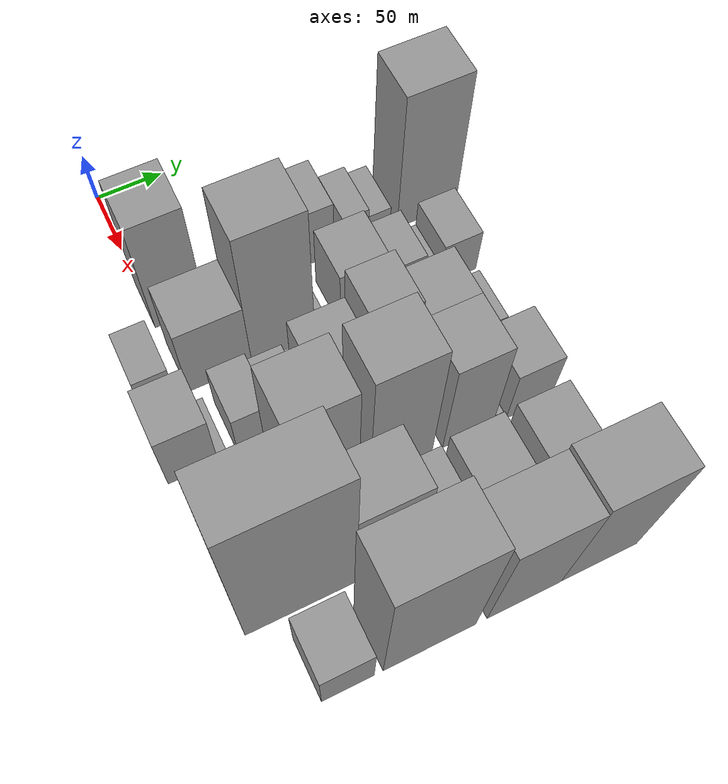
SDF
<sdf version="1.6">
 <world name="default">
  <model name="building_26">
   <static>1</static>
   <pose>100.0000 17.9681 0 0.000000 0.000000 0.000000</pose>
   <link name="link">
    <pose>0 0 61.50 0 0 0</pose>
    <collision name="collision"><geometry><box><size>40.0000 38.0555 123.0000</size></box></geometry></collision>
    <visual name="visual">
     <cast_shadows>0</cast_shadows>
     <geometry><box><size>40.0000 38.0555 123.0000</size></box></geometry>
     <material>
      <script>
       <uri>model://grey_wall/materials/scripts</uri>
       <uri>model://grey_wall/materials/textures</uri>
       <name>vrc/grey_wall</name>
      </script>
     </material>
    </visual>
   </link>
  </model>
  <model name="building_27">
   <static>1</static>
   <pose>100.0000 120.3168 0 0.000000 0.000000 0.000000</pose>
   <link name="link">
    <pose>0 0 31.50 0 0 0</pose>
    <collision name="collision"><geometry><box><size>40.0000 32.2140 63.0000</size></box></geometry></collision>
    <visual name="visual">
     <cast_shadows>0</cast_shadows>
     <geometry><box><size>40.0000 32.2140 63.0000</size></box></geometry>
     <material>
      <script>
       <uri>model://grey_wall/materials/scripts</uri>
       <uri>model://grey_wall/materials/textures</uri>
       <name>vrc/grey_wall</name>
      </script>
     </material>
    </visual>
   </link>
  </model>
  <model name="building_28">
   <static>1</static>
   <pose>100.0000 153.5409 0 0.000000 0.000000 0.000000</pose>
   <link name="link">
    <pose>0 0 19.50 0 0 0</pose>
    <collision name="collision"><geometry><box><size>40.0000 20.2342 39.0000</size></box></geometry></collision>
    <visual name="visual">
     <cast_shadows>0</cast_shadows>
     <geometry><box><size>40.0000 20.2342 39.0000</size></box></geometry>
     <material>
      <script>
       <uri>model://grey_wall/materials/scripts</uri>
       <uri>model://grey_wall/materials/textures</uri>
       <name>vrc/grey_wall</name>
      </script>
     </material>
    </visual>
   </link>
  </model>
  <model name="building_29">
   <static>1</static>
   <pose>100.0000 172.3773 0 0.000000 0.000000 0.000000</pose>
   <link name="link">
    <pose>0 0 15.00 0 0 0</pose>
    <collision name="collision"><geometry><box><size>40.0000 17.4387 30.0000</size></box></geometry></collision>
    <visual name="visual">
     <cast_shadows>0</cast_shadows>
     <geometry><box><size>40.0000 17.4387 30.0000</size></box></geometry>
     <material>
      <script>
       <uri>model://grey_wall/materials/scripts</uri>
       <uri>model://grey_wall/materials/textures</uri>
       <name>vrc/grey_wall</name>
      </script>
     </material>
    </visual>
   </link>
  </model>
  <model name="building_30">
   <static>1</static>
   <pose>100.0000 211.2149 0 0.000000 0.000000 0.000000</pose>
   <link name="link">
    <pose>0 0 72.00 0 0 0</pose>
    <collision name="collision"><geometry><box><size>40.0000 48.2366 144.0000</size></box></geometry></collision>
    <visual name="visual">
     <cast_shadows>0</cast_shadows>
     <geometry><box><size>40.0000 48.2366 144.0000</size></box></geometry>
     <material>
      <script>
       <uri>model://grey_wall/materials/scripts</uri>
       <uri>model://grey_wall/materials/textures</uri>
       <name>vrc/grey_wall</name>
      </script>
     </material>
    </visual>
   </link>
  </model>
  <model name="building_71">
   <static>1</static>
   <pose>155.0000 -19.7303 0 0.000000 0.000000 0.000000</pose>
   <link name="link">
    <pose>0 0 21.00 0 0 0</pose>
    <collision name="collision"><geometry><box><size>40.0000 24.4039 42.0000</size></box></geometry></collision>
    <visual name="visual">
     <cast_shadows>0</cast_shadows>
     <geometry><box><size>40.0000 24.4039 42.0000</size></box></geometry>
     <material>
      <script>
       <uri>model://grey_wall/materials/scripts</uri>
       <uri>model://grey_wall/materials/textures</uri>
       <name>vrc/grey_wall</name>
      </script>
     </material>
    </visual>
   </link>
  </model>
  <model name="building_72">
   <static>1</static>
   <pose>155.0000 24.8580 0 0.000000 0.000000 0.000000</pose>
   <link name="link">
    <pose>0 0 39.00 0 0 0</pose>
    <collision name="collision"><geometry><box><size>40.0000 46.7727 78.0000</size></box></geometry></collision>
    <visual name="visual">
     <cast_shadows>0</cast_shadows>
     <geometry><box><size>40.0000 46.7727 78.0000</size></box></geometry>
     <material>
      <script>
       <uri>model://grey_wall/materials/scripts</uri>
       <uri>model://grey_wall/materials/textures</uri>
       <name>vrc/grey_wall</name>
      </script>
     </material>
    </visual>
   </link>
  </model>
  <model name="building_73">
   <static>1</static>
   <pose>155.0000 71.9212 0 0.000000 0.000000 0.000000</pose>
   <link name="link">
    <pose>0 0 78.00 0 0 0</pose>
    <collision name="collision"><geometry><box><size>40.0000 47.3537 156.0000</size></box></geometry></collision>
    <visual name="visual">
     <cast_shadows>0</cast_shadows>
     <geometry><box><size>40.0000 47.3537 156.0000</size></box></geometry>
     <material>
      <script>
       <uri>model://grey_wall/materials/scripts</uri>
       <uri>model://grey_wall/materials/textures</uri>
       <name>vrc/grey_wall</name>
      </script>
     </material>
    </visual>
   </link>
  </model>
  <model name="building_74">
   <static>1</static>
   <pose>155.0000 100.2615 0 0.000000 0.000000 0.000000</pose>
   <link name="link">
    <pose>0 0 10.50 0 0 0</pose>
    <collision name="collision"><geometry><box><size>40.0000 9.3268 21.0000</size></box></geometry></collision>
    <visual name="visual">
     <cast_shadows>0</cast_shadows>
     <geometry><box><size>40.0000 9.3268 21.0000</size></box></geometry>
     <material>
      <script>
       <uri>model://grey_wall/materials/scripts</uri>
       <uri>model://grey_wall/materials/textures</uri>
       <name>vrc/grey_wall</name>
      </script>
     </material>
    </visual>
   </link>
  </model>
  <model name="building_75">
   <static>1</static>
   <pose>155.0000 133.3745 0 0.000000 0.000000 0.000000</pose>
   <link name="link">
    <pose>0 0 33.00 0 0 0</pose>
    <collision name="collision"><geometry><box><size>40.0000 36.8993 66.0000</size></box></geometry></collision>
    <visual name="visual">
     <cast_shadows>0</cast_shadows>
     <geometry><box><size>40.0000 36.8993 66.0000</size></box></geometry>
     <material>
      <script>
       <uri>model://grey_wall/materials/scripts</uri>
       <uri>model://grey_wall/materials/textures</uri>
       <name>vrc/grey_wall</name>
      </script>
     </material>
    </visual>
   </link>
  </model>
  <model name="building_76">
   <static>1</static>
   <pose>155.0000 165.8428 0 0.000000 0.000000 0.000000</pose>
   <link name="link">
    <pose>0 0 24.00 0 0 0</pose>
    <collision name="collision"><geometry><box><size>40.0000 28.0374 48.0000</size></box></geometry></collision>
    <visual name="visual">
     <cast_shadows>0</cast_shadows>
     <geometry><box><size>40.0000 28.0374 48.0000</size></box></geometry>
     <material>
      <script>
       <uri>model://grey_wall/materials/scripts</uri>
       <uri>model://grey_wall/materials/textures</uri>
       <name>vrc/grey_wall</name>
      </script>
     </material>
    </visual>
   </link>
  </model>
  <model name="building_77">
   <static>1</static>
   <pose>155.0000 188.6100 0 0.000000 0.000000 0.000000</pose>
   <link name="link">
    <pose>0 0 10.50 0 0 0</pose>
    <collision name="collision"><geometry><box><size>40.0000 9.4970 21.0000</size></box></geometry></collision>
    <visual name="visual">
     <cast_shadows>0</cast_shadows>
     <geometry><box><size>40.0000 9.4970 21.0000</size></box></geometry>
     <material>
      <script>
       <uri>model://grey_wall/materials/scripts</uri>
       <uri>model://grey_wall/materials/textures</uri>
       <name>vrc/grey_wall</name>
      </script>
     </material>
    </visual>
   </link>
  </model>
  <model name="building_78">
   <static>1</static>
   <pose>155.0000 207.6373 0 0.000000 0.000000 0.000000</pose>
   <link name="link">
    <pose>0 0 24.00 0 0 0</pose>
    <collision name="collision"><geometry><box><size>40.0000 28.5574 48.0000</size></box></geometry></collision>
    <visual name="visual">
     <cast_shadows>0</cast_shadows>
     <geometry><box><size>40.0000 28.5574 48.0000</size></box></geometry>
     <material>
      <script>
       <uri>model://grey_wall/materials/scripts</uri>
       <uri>model://grey_wall/materials/textures</uri>
       <name>vrc/grey_wall</name>
      </script>
     </material>
    </visual>
   </link>
  </model>
  <model name="building_127">
   <static>1</static>
   <pose>210.0000 -17.3884 0 0.000000 0.000000 0.000000</pose>
   <link name="link">
    <pose>0 0 33.00 0 0 0</pose>
    <collision name="collision"><geometry><box><size>40.0000 35.0123 66.0000</size></box></geometry></collision>
    <visual name="visual">
     <cast_shadows>0</cast_shadows>
     <geometry><box><size>40.0000 35.0123 66.0000</size></box></geometry>
     <material>
      <script>
       <uri>model://grey_wall/materials/scripts</uri>
       <uri>model://grey_wall/materials/textures</uri>
       <name>vrc/grey_wall</name>
      </script>
     </material>
    </visual>
   </link>
  </model>
  <model name="building_128">
   <static>1</static>
   <pose>210.0000 3.6164 0 0.000000 0.000000 0.000000</pose>
   <link name="link">
    <pose>0 0 7.50 0 0 0</pose>
    <collision name="collision"><geometry><box><size>40.0000 6.9972 15.0000</size></box></geometry></collision>
    <visual name="visual">
     <cast_shadows>0</cast_shadows>
     <geometry><box><size>40.0000 6.9972 15.0000</size></box></geometry>
     <material>
      <script>
       <uri>model://grey_wall/materials/scripts</uri>
       <uri>model://grey_wall/materials/textures</uri>
       <name>vrc/grey_wall</name>
      </script>
     </material>
    </visual>
   </link>
  </model>
  <model name="building_129">
   <static>1</static>
   <pose>210.0000 27.3994 0 0.000000 0.000000 0.000000</pose>
   <link name="link">
    <pose>0 0 25.50 0 0 0</pose>
    <collision name="collision"><geometry><box><size>40.0000 26.5687 51.0000</size></box></geometry></collision>
    <visual name="visual">
     <cast_shadows>0</cast_shadows>
     <geometry><box><size>40.0000 26.5687 51.0000</size></box></geometry>
     <material>
      <script>
       <uri>model://grey_wall/materials/scripts</uri>
       <uri>model://grey_wall/materials/textures</uri>
       <name>vrc/grey_wall</name>
      </script>
     </material>
    </visual>
   </link>
  </model>
  <model name="building_130">
   <static>1</static>
   <pose>210.0000 53.1228 0 0.000000 0.000000 0.000000</pose>
   <link name="link">
    <pose>0 0 21.00 0 0 0</pose>
    <collision name="collision"><geometry><box><size>40.0000 24.8782 42.0000</size></box></geometry></collision>
    <visual name="visual">
     <cast_shadows>0</cast_shadows>
     <geometry><box><size>40.0000 24.8782 42.0000</size></box></geometry>
     <material>
      <script>
       <uri>model://grey_wall/materials/scripts</uri>
       <uri>model://grey_wall/materials/textures</uri>
       <name>vrc/grey_wall</name>
      </script>
     </material>
    </visual>
   </link>
  </model>
  <model name="building_131">
   <static>1</static>
   <pose>210.0000 90.8066 0 0.000000 0.000000 0.000000</pose>
   <link name="link">
    <pose>0 0 34.50 0 0 0</pose>
    <collision name="collision"><geometry><box><size>40.0000 40.4894 69.0000</size></box></geometry></collision>
    <visual name="visual">
     <cast_shadows>0</cast_shadows>
     <geometry><box><size>40.0000 40.4894 69.0000</size></box></geometry>
     <material>
      <script>
       <uri>model://grey_wall/materials/scripts</uri>
       <uri>model://grey_wall/materials/textures</uri>
       <name>vrc/grey_wall</name>
      </script>
     </material>
    </visual>
   </link>
  </model>
  <model name="building_132">
   <static>1</static>
   <pose>210.0000 128.0512 0 0.000000 0.000000 0.000000</pose>
   <link name="link">
    <pose>0 0 51.00 0 0 0</pose>
    <collision name="collision"><geometry><box><size>40.0000 33.9999 102.0000</size></box></geometry></collision>
    <visual name="visual">
     <cast_shadows>0</cast_shadows>
     <geometry><box><size>40.0000 33.9999 102.0000</size></box></geometry>
     <material>
      <script>
       <uri>model://grey_wall/materials/scripts</uri>
       <uri>model://grey_wall/materials/textures</uri>
       <name>vrc/grey_wall</name>
      </script>
     </material>
    </visual>
   </link>
  </model>
  <model name="building_133">
   <static>1</static>
   <pose>210.0000 169.4669 0 0.000000 0.000000 0.000000</pose>
   <link name="link">
    <pose>0 0 37.50 0 0 0</pose>
    <collision name="collision"><geometry><box><size>40.0000 38.8314 75.0000</size></box></geometry></collision>
    <visual name="visual">
     <cast_shadows>0</cast_shadows>
     <geometry><box><size>40.0000 38.8314 75.0000</size></box></geometry>
     <material>
      <script>
       <uri>model://grey_wall/materials/scripts</uri>
       <uri>model://grey_wall/materials/textures</uri>
       <name>vrc/grey_wall</name>
      </script>
     </material>
    </visual>
   </link>
  </model>
  <model name="building_134">
   <static>1</static>
   <pose>210.0000 194.6964 0 0.000000 0.000000 0.000000</pose>
   <link name="link">
    <pose>0 0 12.00 0 0 0</pose>
    <collision name="collision"><geometry><box><size>40.0000 11.6277 24.0000</size></box></geometry></collision>
    <visual name="visual">
     <cast_shadows>0</cast_shadows>
     <geometry><box><size>40.0000 11.6277 24.0000</size></box></geometry>
     <material>
      <script>
       <uri>model://grey_wall/materials/scripts</uri>
       <uri>model://grey_wall/materials/textures</uri>
       <name>vrc/grey_wall</name>
      </script>
     </material>
    </visual>
   </link>
  </model>
  <model name="building_135">
   <static>1</static>
   <pose>210.0000 206.9292 0 0.000000 0.000000 0.000000</pose>
   <link name="link">
    <pose>0 0 13.50 0 0 0</pose>
    <collision name="collision"><geometry><box><size>40.0000 12.8377 27.0000</size></box></geometry></collision>
    <visual name="visual">
     <cast_shadows>0</cast_shadows>
     <geometry><box><size>40.0000 12.8377 27.0000</size></box></geometry>
     <material>
      <script>
       <uri>model://grey_wall/materials/scripts</uri>
       <uri>model://grey_wall/materials/textures</uri>
       <name>vrc/grey_wall</name>
      </script>
     </material>
    </visual>
   </link>
  </model>
  <model name="building_181">
   <static>1</static>
   <pose>265.0000 -10.8757 0 0.000000 0.000000 0.000000</pose>
   <link name="link">
    <pose>0 0 15.00 0 0 0</pose>
    <collision name="collision"><geometry><box><size>40.0000 16.2422 30.0000</size></box></geometry></collision>
    <visual name="visual">
     <cast_shadows>0</cast_shadows>
     <geometry><box><size>40.0000 16.2422 30.0000</size></box></geometry>
     <material>
      <script>
       <uri>model://grey_wall/materials/scripts</uri>
       <uri>model://grey_wall/materials/textures</uri>
       <name>vrc/grey_wall</name>
      </script>
     </material>
    </visual>
   </link>
  </model>
  <model name="building_182">
   <static>1</static>
   <pose>265.0000 17.3211 0 0.000000 0.000000 0.000000</pose>
   <link name="link">
    <pose>0 0 24.00 0 0 0</pose>
    <collision name="collision"><geometry><box><size>40.0000 24.1514 48.0000</size></box></geometry></collision>
    <visual name="visual">
     <cast_shadows>0</cast_shadows>
     <geometry><box><size>40.0000 24.1514 48.0000</size></box></geometry>
     <material>
      <script>
       <uri>model://grey_wall/materials/scripts</uri>
       <uri>model://grey_wall/materials/textures</uri>
       <name>vrc/grey_wall</name>
      </script>
     </material>
    </visual>
   </link>
  </model>
  <model name="building_183">
   <static>1</static>
   <pose>265.0000 52.2845 0 0.000000 0.000000 0.000000</pose>
   <link name="link">
    <pose>0 0 73.50 0 0 0</pose>
    <collision name="collision"><geometry><box><size>40.0000 45.7754 147.0000</size></box></geometry></collision>
    <visual name="visual">
     <cast_shadows>0</cast_shadows>
     <geometry><box><size>40.0000 45.7754 147.0000</size></box></geometry>
     <material>
      <script>
       <uri>model://grey_wall/materials/scripts</uri>
       <uri>model://grey_wall/materials/textures</uri>
       <name>vrc/grey_wall</name>
      </script>
     </material>
    </visual>
   </link>
  </model>
  <model name="building_184">
   <static>1</static>
   <pose>265.0000 105.7808 0 0.000000 0.000000 0.000000</pose>
   <link name="link">
    <pose>0 0 75.00 0 0 0</pose>
    <collision name="collision"><geometry><box><size>40.0000 45.2170 150.0000</size></box></geometry></collision>
    <visual name="visual">
     <cast_shadows>0</cast_shadows>
     <geometry><box><size>40.0000 45.2170 150.0000</size></box></geometry>
     <material>
      <script>
       <uri>model://grey_wall/materials/scripts</uri>
       <uri>model://grey_wall/materials/textures</uri>
       <name>vrc/grey_wall</name>
      </script>
     </material>
    </visual>
   </link>
  </model>
  <model name="building_185">
   <static>1</static>
   <pose>265.0000 155.1707 0 0.000000 0.000000 0.000000</pose>
   <link name="link">
    <pose>0 0 57.00 0 0 0</pose>
    <collision name="collision"><geometry><box><size>40.0000 37.5629 114.0000</size></box></geometry></collision>
    <visual name="visual">
     <cast_shadows>0</cast_shadows>
     <geometry><box><size>40.0000 37.5629 114.0000</size></box></geometry>
     <material>
      <script>
       <uri>model://grey_wall/materials/scripts</uri>
       <uri>model://grey_wall/materials/textures</uri>
       <name>vrc/grey_wall</name>
      </script>
     </material>
    </visual>
   </link>
  </model>
  <model name="building_186">
   <static>1</static>
   <pose>265.0000 177.1389 0 0.000000 0.000000 0.000000</pose>
   <link name="link">
    <pose>0 0 7.50 0 0 0</pose>
    <collision name="collision"><geometry><box><size>40.0000 6.3734 15.0000</size></box></geometry></collision>
    <visual name="visual">
     <cast_shadows>0</cast_shadows>
     <geometry><box><size>40.0000 6.3734 15.0000</size></box></geometry>
     <material>
      <script>
       <uri>model://grey_wall/materials/scripts</uri>
       <uri>model://grey_wall/materials/textures</uri>
       <name>vrc/grey_wall</name>
      </script>
     </material>
    </visual>
   </link>
  </model>
  <model name="building_187">
   <static>1</static>
   <pose>265.0000 201.1414 0 0.000000 0.000000 0.000000</pose>
   <link name="link">
    <pose>0 0 31.50 0 0 0</pose>
    <collision name="collision"><geometry><box><size>40.0000 33.6316 63.0000</size></box></geometry></collision>
    <visual name="visual">
     <cast_shadows>0</cast_shadows>
     <geometry><box><size>40.0000 33.6316 63.0000</size></box></geometry>
     <material>
      <script>
       <uri>model://grey_wall/materials/scripts</uri>
       <uri>model://grey_wall/materials/textures</uri>
       <name>vrc/grey_wall</name>
      </script>
     </material>
    </visual>
   </link>
  </model>
  <model name="building_234">
   <static>1</static>
   <pose>320.0000 9.0968 0 0.000000 0.000000 0.000000</pose>
   <link name="link">
    <pose>0 0 96.00 0 0 0</pose>
    <collision name="collision"><geometry><box><size>40.0000 75.2006 192.0000</size></box></geometry></collision>
    <visual name="visual">
     <cast_shadows>0</cast_shadows>
     <geometry><box><size>40.0000 75.2006 192.0000</size></box></geometry>
     <material>
      <script>
       <uri>model://grey_wall/materials/scripts</uri>
       <uri>model://grey_wall/materials/textures</uri>
       <name>vrc/grey_wall</name>
      </script>
     </material>
    </visual>
   </link>
  </model>
  <model name="building_235">
   <static>1</static>
   <pose>320.0000 69.8630 0 0.000000 0.000000 0.000000</pose>
   <link name="link">
    <pose>0 0 60.00 0 0 0</pose>
    <collision name="collision"><geometry><box><size>40.0000 46.3316 120.0000</size></box></geometry></collision>
    <visual name="visual">
     <cast_shadows>0</cast_shadows>
     <geometry><box><size>40.0000 46.3316 120.0000</size></box></geometry>
     <material>
      <script>
       <uri>model://grey_wall/materials/scripts</uri>
       <uri>model://grey_wall/materials/textures</uri>
       <name>vrc/grey_wall</name>
      </script>
     </material>
    </visual>
   </link>
  </model>
  <model name="building_236">
   <static>1</static>
   <pose>320.0000 107.8897 0 0.000000 0.000000 0.000000</pose>
   <link name="link">
    <pose>0 0 27.00 0 0 0</pose>
    <collision name="collision"><geometry><box><size>40.0000 29.7218 54.0000</size></box></geometry></collision>
    <visual name="visual">
     <cast_shadows>0</cast_shadows>
     <geometry><box><size>40.0000 29.7218 54.0000</size></box></geometry>
     <material>
      <script>
       <uri>model://grey_wall/materials/scripts</uri>
       <uri>model://grey_wall/materials/textures</uri>
       <name>vrc/grey_wall</name>
      </script>
     </material>
    </visual>
   </link>
  </model>
  <model name="building_237">
   <static>1</static>
   <pose>320.0000 146.4699 0 0.000000 0.000000 0.000000</pose>
   <link name="link">
    <pose>0 0 31.50 0 0 0</pose>
    <collision name="collision"><geometry><box><size>40.0000 37.4387 63.0000</size></box></geometry></collision>
    <visual name="visual">
     <cast_shadows>0</cast_shadows>
     <geometry><box><size>40.0000 37.4387 63.0000</size></box></geometry>
     <material>
      <script>
       <uri>model://grey_wall/materials/scripts</uri>
       <uri>model://grey_wall/materials/textures</uri>
       <name>vrc/grey_wall</name>
      </script>
     </material>
    </visual>
   </link>
  </model>
  <model name="building_238">
   <static>1</static>
   <pose>320.0000 191.7736 0 0.000000 0.000000 0.000000</pose>
   <link name="link">
    <pose>0 0 33.00 0 0 0</pose>
    <collision name="collision"><geometry><box><size>40.0000 37.1687 66.0000</size></box></geometry></collision>
    <visual name="visual">
     <cast_shadows>0</cast_shadows>
     <geometry><box><size>40.0000 37.1687 66.0000</size></box></geometry>
     <material>
      <script>
       <uri>model://grey_wall/materials/scripts</uri>
       <uri>model://grey_wall/materials/textures</uri>
       <name>vrc/grey_wall</name>
      </script>
     </material>
    </visual>
   </link>
  </model>
  <model name="building_285">
   <static>1</static>
   <pose>375.0000 14.0545 0 0.000000 0.000000 0.000000</pose>
   <link name="link">
    <pose>0 0 30.00 0 0 0</pose>
    <collision name="collision"><geometry><box><size>40.0000 34.6490 60.0000</size></box></geometry></collision>
    <visual name="visual">
     <cast_shadows>0</cast_shadows>
     <geometry><box><size>40.0000 34.6490 60.0000</size></box></geometry>
     <material>
      <script>
       <uri>model://grey_wall/materials/scripts</uri>
       <uri>model://grey_wall/materials/textures</uri>
       <name>vrc/grey_wall</name>
      </script>
     </material>
    </visual>
   </link>
  </model>
  <model name="building_286">
   <static>1</static>
   <pose>375.0000 68.8681 0 0.000000 0.000000 0.000000</pose>
   <link name="link">
    <pose>0 0 84.00 0 0 0</pose>
    <collision name="collision"><geometry><box><size>40.0000 62.9781 168.0000</size></box></geometry></collision>
    <visual name="visual">
     <cast_shadows>0</cast_shadows>
     <geometry><box><size>40.0000 62.9781 168.0000</size></box></geometry>
     <material>
      <script>
       <uri>model://grey_wall/materials/scripts</uri>
       <uri>model://grey_wall/materials/textures</uri>
       <name>vrc/grey_wall</name>
      </script>
     </material>
    </visual>
   </link>
  </model>
  <model name="building_287">
   <static>1</static>
   <pose>375.0000 134.6623 0 0.000000 0.000000 0.000000</pose>
   <link name="link">
    <pose>0 0 67.50 0 0 0</pose>
    <collision name="collision"><geometry><box><size>40.0000 52.6102 135.0000</size></box></geometry></collision>
    <visual name="visual">
     <cast_shadows>0</cast_shadows>
     <geometry><box><size>40.0000 52.6102 135.0000</size></box></geometry>
     <material>
      <script>
       <uri>model://grey_wall/materials/scripts</uri>
       <uri>model://grey_wall/materials/textures</uri>
       <name>vrc/grey_wall</name>
      </script>
     </material>
    </visual>
   </link>
  </model>
  <model name="building_288">
   <static>1</static>
   <pose>375.0000 188.4760 0 0.000000 0.000000 0.000000</pose>
   <link name="link">
    <pose>0 0 70.50 0 0 0</pose>
    <collision name="collision"><geometry><box><size>40.0000 55.0171 141.0000</size></box></geometry></collision>
    <visual name="visual">
     <cast_shadows>0</cast_shadows>
     <geometry><box><size>40.0000 55.0171 141.0000</size></box></geometry>
     <material>
      <script>
       <uri>model://grey_wall/materials/scripts</uri>
       <uri>model://grey_wall/materials/textures</uri>
       <name>vrc/grey_wall</name>
      </script>
     </material>
    </visual>
   </link>
  </model>
 </world>
</sdf>
